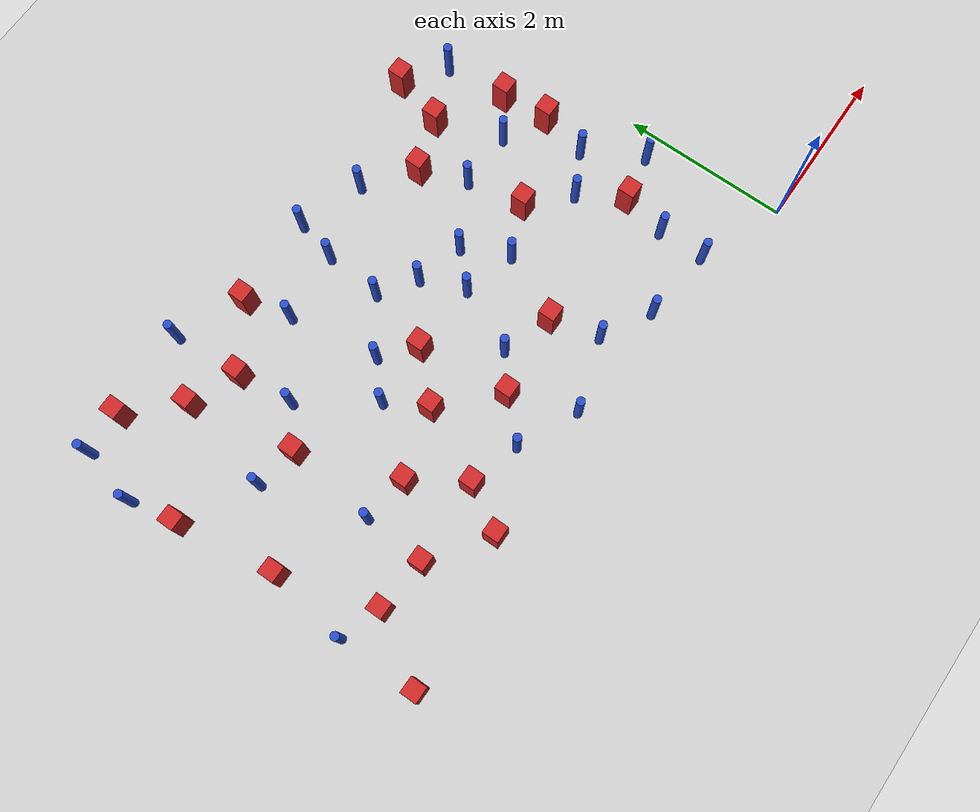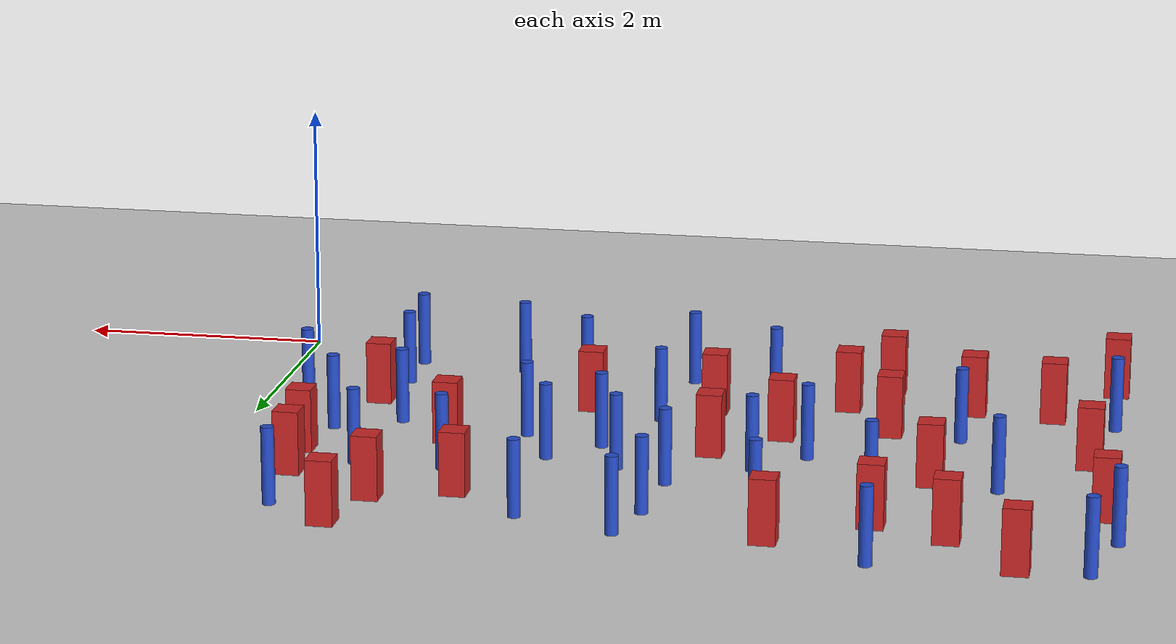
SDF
<sdf version="1.6">
 <world name="default">
  <model name="ground_plane">
   <static>1</static>
   <link name="link">
    <collision name="collision">
     <geometry><plane><normal>0 0 1</normal><size>100 100</size></plane></geometry>
     <surface><friction><ode><mu>100</mu><mu2>50</mu2></ode></friction></surface>
    </collision>
    <visual name="visual">
     <cast_shadows>0</cast_shadows>
     <geometry><plane><normal>0 0 1</normal><size>100 100</size></plane></geometry>
     <material>
      <ambient>1.0 1.0 1.0 1.0</ambient>
      <diffuse>0.8 0.8 0.8 1.0</diffuse>
      <specular>0.01 0.01 0.01 1.000000</specular>
     </material>
    </visual>
   </link>
  </model>
  <model name="pole_obstacle0">
   <static>true</static>
   <pose>-2.47867207568 0.840355301405 7.38925637345e-09 -8.471706928e-08 1.24976765177e-08 -1.74513093012e-07</pose>
   <link name="link">
    <pose>0 0 0.3 0 -0 0</pose>
    <inertial>
     <mass>1</mass>
     <inertia><ixx>0.145833</ixx><ixy>0</ixy><ixz>0</ixz><iyy>0.145833</iyy><iyz>0</iyz><izz>0.125</izz></inertia>
    </inertial>
    <collision name="collision">
     <geometry><cylinder><radius>0.05</radius><length>.6</length></cylinder></geometry>
    </collision>
    <visual name="visual">
     <geometry><cylinder><radius>0.05</radius><length>.6</length></cylinder></geometry>
     <material>
      <script><name>Gazebo/Blue</name><uri>file://media/materials/scripts/gazebo.material</uri></script>
     </material>
    </visual>
   </link>
  </model>
  <model name="pole_obstacle9">
   <static>true</static>
   <pose>-0.332700703792 1.61640806148 7.38925637345e-09 -8.47170692798e-08 1.24976765025e-08 -1.74513093018e-07</pose>
   <link name="link">
    <pose>0 0 0.3 0 -0 0</pose>
    <inertial>
     <mass>1</mass>
     <inertia><ixx>0.145833</ixx><ixy>0</ixy><ixz>0</ixz><iyy>0.145833</iyy><iyz>0</iyz><izz>0.125</izz></inertia>
    </inertial>
    <collision name="collision">
     <geometry><cylinder><radius>0.05</radius><length>.6</length></cylinder></geometry>
    </collision>
    <visual name="visual">
     <geometry><cylinder><radius>0.05</radius><length>.6</length></cylinder></geometry>
     <material>
      <script><name>Gazebo/Blue</name><uri>file://media/materials/scripts/gazebo.material</uri></script>
     </material>
    </visual>
   </link>
  </model>
  <model name="square_post_obstacle18">
   <static>true</static>
   <pose>-6.61899511941 2.2001608729 1.91545236811e-07 -7.35059704564e-06 1.12565212e-07 2.39332434364e-05</pose>
   <link name="link">
    <pose>0 0 0.25 0 -0 0</pose>
    <inertial>
     <mass>100</mass>
     <inertia>
      <ixx>0.166667</ixx>
      <ixy>0</ixy>
      <ixz>0</ixz>
      <iyy>0.166667</iyy>
      <iyz>0</iyz>
      <izz>0.166667</izz>
     </inertia>
    </inertial>
    <collision name="collision"><geometry><box><size>.2 .2 .5</size></box></geometry></collision>
    <visual name="visual">
     <geometry><box><size>.2 .2 .5</size></box></geometry>
     <material>
      <script><name>Gazebo/Red</name><uri>file://media/materials/scripts/gazebo.material</uri></script>
     </material>
    </visual>
   </link>
  </model>
  <model name="square_post_obstacle27">
   <static>true</static>
   <pose>-0.602505569343 2.85441513764 1.91545236811e-07 -7.35059704564e-06 1.12565212e-07 2.39332434364e-05</pose>
   <link name="link">
    <pose>0 0 0.25 0 -0 0</pose>
    <inertial>
     <mass>100</mass>
     <inertia>
      <ixx>0.166667</ixx>
      <ixy>0</ixy>
      <ixz>0</ixz>
      <iyy>0.166667</iyy>
      <iyz>0</iyz>
      <izz>0.166667</izz>
     </inertia>
    </inertial>
    <collision name="collision"><geometry><box><size>.2 .2 .5</size></box></geometry></collision>
    <visual name="visual">
     <geometry><box><size>.2 .2 .5</size></box></geometry>
     <material>
      <script><name>Gazebo/Red</name><uri>file://media/materials/scripts/gazebo.material</uri></script>
     </material>
    </visual>
   </link>
  </model>
  <model name="pole_obstacle30">
   <static>true</static>
   <pose>-6.75025455337 4.66066709969 7.38925637345e-09 -8.47170692796e-08 1.24976764786e-08 -1.74513093032e-07</pose>
   <link name="link">
    <pose>0 0 0.3 0 -0 0</pose>
    <inertial>
     <mass>1</mass>
     <inertia><ixx>0.145833</ixx><ixy>0</ixy><ixz>0</ixz><iyy>0.145833</iyy><iyz>0</iyz><izz>0.125</izz></inertia>
    </inertial>
    <collision name="collision">
     <geometry><cylinder><radius>0.05</radius><length>.6</length></cylinder></geometry>
    </collision>
    <visual name="visual">
     <geometry><cylinder><radius>0.05</radius><length>.6</length></cylinder></geometry>
     <material>
      <script><name>Gazebo/Blue</name><uri>file://media/materials/scripts/gazebo.material</uri></script>
     </material>
    </visual>
   </link>
  </model>
  <model name="pole_obstacle38">
   <static>true</static>
   <pose>-1.89686387756 0.518057410888 7.38925637345e-09 -8.47170692799e-08 1.24976765051e-08 -1.74513093017e-07</pose>
   <link name="link">
    <pose>0 0 0.3 0 -0 0</pose>
    <inertial>
     <mass>1</mass>
     <inertia><ixx>0.145833</ixx><ixy>0</ixy><ixz>0</ixz><iyy>0.145833</iyy><iyz>0</iyz><izz>0.125</izz></inertia>
    </inertial>
    <collision name="collision">
     <geometry><cylinder><radius>0.05</radius><length>.6</length></cylinder></geometry>
    </collision>
    <visual name="visual">
     <geometry><cylinder><radius>0.05</radius><length>.6</length></cylinder></geometry>
     <material>
      <script><name>Gazebo/Blue</name><uri>file://media/materials/scripts/gazebo.material</uri></script>
     </material>
    </visual>
   </link>
  </model>
  <model name="square_post_obstacle38">
   <static>true</static>
   <pose>-4.64865458235 1.05499291768 1.91545236811e-07 -7.35059704564e-06 1.12565212e-07 2.39332434364e-05</pose>
   <link name="link">
    <pose>0 0 0.25 0 -0 0</pose>
    <inertial>
     <mass>100</mass>
     <inertia>
      <ixx>0.166667</ixx>
      <ixy>0</ixy>
      <ixz>0</ixz>
      <iyy>0.166667</iyy>
      <iyz>0</iyz>
      <izz>0.166667</izz>
     </inertia>
    </inertial>
    <collision name="collision"><geometry><box><size>.2 .2 .5</size></box></geometry></collision>
    <visual name="visual">
     <geometry><box><size>.2 .2 .5</size></box></geometry>
     <material>
      <script><name>Gazebo/Red</name><uri>file://media/materials/scripts/gazebo.material</uri></script>
     </material>
    </visual>
   </link>
  </model>
  <model name="square_post_obstacle44">
   <static>true</static>
   <pose>-5.04046838211 1.66741661739 1.91545236811e-07 -7.35059704564e-06 1.12565212e-07 2.39332434364e-05</pose>
   <link name="link">
    <pose>0 0 0.25 0 -0 0</pose>
    <inertial>
     <mass>100</mass>
     <inertia>
      <ixx>0.166667</ixx>
      <ixy>0</ixy>
      <ixz>0</ixz>
      <iyy>0.166667</iyy>
      <iyz>0</iyz>
      <izz>0.166667</izz>
     </inertia>
    </inertial>
    <collision name="collision"><geometry><box><size>.2 .2 .5</size></box></geometry></collision>
    <visual name="visual">
     <geometry><box><size>.2 .2 .5</size></box></geometry>
     <material>
      <script><name>Gazebo/Red</name><uri>file://media/materials/scripts/gazebo.material</uri></script>
     </material>
    </visual>
   </link>
  </model>
  <model name="pole_obstacle50">
   <static>true</static>
   <pose>-2.25064445351 2.20363865116 7.38925637345e-09 -8.47170692798e-08 1.24976764939e-08 -1.74513093025e-07</pose>
   <link name="link">
    <pose>0 0 0.3 0 -0 0</pose>
    <inertial>
     <mass>1</mass>
     <inertia><ixx>0.145833</ixx><ixy>0</ixy><ixz>0</ixz><iyy>0.145833</iyy><iyz>0</iyz><izz>0.125</izz></inertia>
    </inertial>
    <collision name="collision">
     <geometry><cylinder><radius>0.05</radius><length>.6</length></cylinder></geometry>
    </collision>
    <visual name="visual">
     <geometry><cylinder><radius>0.05</radius><length>.6</length></cylinder></geometry>
     <material>
      <script><name>Gazebo/Blue</name><uri>file://media/materials/scripts/gazebo.material</uri></script>
     </material>
    </visual>
   </link>
  </model>
  <model name="square_post_obstacle50">
   <static>true</static>
   <pose>-1.37859100079 3.9013325248 1.91545236811e-07 -7.35059704564e-06 1.12565212e-07 2.39332434364e-05</pose>
   <link name="link">
    <pose>0 0 0.25 0 -0 0</pose>
    <inertial>
     <mass>100</mass>
     <inertia>
      <ixx>0.166667</ixx>
      <ixy>0</ixy>
      <ixz>0</ixz>
      <iyy>0.166667</iyy>
      <iyz>0</iyz>
      <izz>0.166667</izz>
     </inertia>
    </inertial>
    <collision name="collision"><geometry><box><size>.2 .2 .5</size></box></geometry></collision>
    <visual name="visual">
     <geometry><box><size>.2 .2 .5</size></box></geometry>
     <material>
      <script><name>Gazebo/Red</name><uri>file://media/materials/scripts/gazebo.material</uri></script>
     </material>
    </visual>
   </link>
  </model>
  <model name="pole_obstacle52">
   <static>true</static>
   <pose>-5.17864610444 4.71494136733 7.38925637345e-09 -8.47170692796e-08 1.24976764786e-08 -1.74513093032e-07</pose>
   <link name="link">
    <pose>0 0 0.3 0 -0 0</pose>
    <inertial>
     <mass>1</mass>
     <inertia><ixx>0.145833</ixx><ixy>0</ixy><ixz>0</ixz><iyy>0.145833</iyy><iyz>0</iyz><izz>0.125</izz></inertia>
    </inertial>
    <collision name="collision">
     <geometry><cylinder><radius>0.05</radius><length>.6</length></cylinder></geometry>
    </collision>
    <visual name="visual">
     <geometry><cylinder><radius>0.05</radius><length>.6</length></cylinder></geometry>
     <material>
      <script><name>Gazebo/Blue</name><uri>file://media/materials/scripts/gazebo.material</uri></script>
     </material>
    </visual>
   </link>
  </model>
  <model name="pole_obstacle53">
   <static>true</static>
   <pose>-3.21558309295 1.62672900845 7.38925637345e-09 -8.471706928e-08 1.24976765152e-08 -1.74513093012e-07</pose>
   <link name="link">
    <pose>0 0 0.3 0 -0 0</pose>
    <inertial>
     <mass>1</mass>
     <inertia><ixx>0.145833</ixx><ixy>0</ixy><ixz>0</ixz><iyy>0.145833</iyy><iyz>0</iyz><izz>0.125</izz></inertia>
    </inertial>
    <collision name="collision">
     <geometry><cylinder><radius>0.05</radius><length>.6</length></cylinder></geometry>
    </collision>
    <visual name="visual">
     <geometry><cylinder><radius>0.05</radius><length>.6</length></cylinder></geometry>
     <material>
      <script><name>Gazebo/Blue</name><uri>file://media/materials/scripts/gazebo.material</uri></script>
     </material>
    </visual>
   </link>
  </model>
  <model name="square_post_obstacle60">
   <static>true</static>
   <pose>-5.69667082044 4.10087332013 1.91545236811e-07 -7.35059704564e-06 1.12565212e-07 2.39332434364e-05</pose>
   <link name="link">
    <pose>0 0 0.25 0 -0 0</pose>
    <inertial>
     <mass>100</mass>
     <inertia>
      <ixx>0.166667</ixx>
      <ixy>0</ixy>
      <ixz>0</ixz>
      <iyy>0.166667</iyy>
      <iyz>0</iyz>
      <izz>0.166667</izz>
     </inertia>
    </inertial>
    <collision name="collision"><geometry><box><size>.2 .2 .5</size></box></geometry></collision>
    <visual name="visual">
     <geometry><box><size>.2 .2 .5</size></box></geometry>
     <material>
      <script><name>Gazebo/Red</name><uri>file://media/materials/scripts/gazebo.material</uri></script>
     </material>
    </visual>
   </link>
  </model>
  <model name="pole_obstacle60">
   <static>true</static>
   <pose>-2.53920427261 4.13607881634 7.38925637345e-09 -8.47170692798e-08 1.24976765033e-08 -1.74513093019e-07</pose>
   <link name="link">
    <pose>0 0 0.3 0 -0 0</pose>
    <inertial>
     <mass>1</mass>
     <inertia><ixx>0.145833</ixx><ixy>0</ixy><ixz>0</ixz><iyy>0.145833</iyy><iyz>0</iyz><izz>0.125</izz></inertia>
    </inertial>
    <collision name="collision">
     <geometry><cylinder><radius>0.05</radius><length>.6</length></cylinder></geometry>
    </collision>
    <visual name="visual">
     <geometry><cylinder><radius>0.05</radius><length>.6</length></cylinder></geometry>
     <material>
      <script><name>Gazebo/Blue</name><uri>file://media/materials/scripts/gazebo.material</uri></script>
     </material>
    </visual>
   </link>
  </model>
  <model name="pole_obstacle61">
   <static>true</static>
   <pose>-3.44347080513 3.889952016 7.38925637345e-09 -8.471706928e-08 1.24976765098e-08 -1.74513093016e-07</pose>
   <link name="link">
    <pose>0 0 0.3 0 -0 0</pose>
    <inertial>
     <mass>1</mass>
     <inertia><ixx>0.145833</ixx><ixy>0</ixy><ixz>0</ixz><iyy>0.145833</iyy><iyz>0</iyz><izz>0.125</izz></inertia>
    </inertial>
    <collision name="collision">
     <geometry><cylinder><radius>0.05</radius><length>.6</length></cylinder></geometry>
    </collision>
    <visual name="visual">
     <geometry><cylinder><radius>0.05</radius><length>.6</length></cylinder></geometry>
     <material>
      <script><name>Gazebo/Blue</name><uri>file://media/materials/scripts/gazebo.material</uri></script>
     </material>
    </visual>
   </link>
  </model>
  <model name="pole_obstacle64">
   <static>true</static>
   <pose>-1.77953633119 3.14322801685 7.38925637345e-09 -8.47170692799e-08 1.24976765053e-08 -1.74513093017e-07</pose>
   <link name="link">
    <pose>0 0 0.3 0 -0 0</pose>
    <inertial>
     <mass>1</mass>
     <inertia><ixx>0.145833</ixx><ixy>0</ixy><ixz>0</ixz><iyy>0.145833</iyy><iyz>0</iyz><izz>0.125</izz></inertia>
    </inertial>
    <collision name="collision">
     <geometry><cylinder><radius>0.05</radius><length>.6</length></cylinder></geometry>
    </collision>
    <visual name="visual">
     <geometry><cylinder><radius>0.05</radius><length>.6</length></cylinder></geometry>
     <material>
      <script><name>Gazebo/Blue</name><uri>file://media/materials/scripts/gazebo.material</uri></script>
     </material>
    </visual>
   </link>
  </model>
  <model name="pole_obstacle70">
   <static>true</static>
   <pose>-0.70093164936 4.18907004693 7.38925637345e-09 -8.471706928e-08 1.24976765086e-08 -1.74513093015e-07</pose>
   <link name="link">
    <pose>0 0 0.3 0 -0 0</pose>
    <inertial>
     <mass>1</mass>
     <inertia><ixx>0.145833</ixx><ixy>0</ixy><ixz>0</ixz><iyy>0.145833</iyy><iyz>0</iyz><izz>0.125</izz></inertia>
    </inertial>
    <collision name="collision">
     <geometry><cylinder><radius>0.05</radius><length>.6</length></cylinder></geometry>
    </collision>
    <visual name="visual">
     <geometry><cylinder><radius>0.05</radius><length>.6</length></cylinder></geometry>
     <material>
      <script><name>Gazebo/Blue</name><uri>file://media/materials/scripts/gazebo.material</uri></script>
     </material>
    </visual>
   </link>
  </model>
  <model name="pole_obstacle81">
   <static>true</static>
   <pose>-3.32470801364 0.561410433167 7.38925637345e-09 -8.471706928e-08 1.24976765177e-08 -1.74513093012e-07</pose>
   <link name="link">
    <pose>0 0 0.3 0 -0 0</pose>
    <inertial>
     <mass>1</mass>
     <inertia><ixx>0.145833</ixx><ixy>0</ixy><ixz>0</ixz><iyy>0.145833</iyy><iyz>0</iyz><izz>0.125</izz></inertia>
    </inertial>
    <collision name="collision">
     <geometry><cylinder><radius>0.05</radius><length>.6</length></cylinder></geometry>
    </collision>
    <visual name="visual">
     <geometry><cylinder><radius>0.05</radius><length>.6</length></cylinder></geometry>
     <material>
      <script><name>Gazebo/Blue</name><uri>file://media/materials/scripts/gazebo.material</uri></script>
     </material>
    </visual>
   </link>
  </model>
  <model name="square_post_obstacle83">
   <static>true</static>
   <pose>-0.650541361645 3.42090749881 1.91545236811e-07 -7.35059704564e-06 1.12565212e-07 2.39332434364e-05</pose>
   <link name="link">
    <pose>0 0 0.25 0 -0 0</pose>
    <inertial>
     <mass>100</mass>
     <inertia>
      <ixx>0.166667</ixx>
      <ixy>0</ixy>
      <ixz>0</ixz>
      <iyy>0.166667</iyy>
      <iyz>0</iyz>
      <izz>0.166667</izz>
     </inertia>
    </inertial>
    <collision name="collision"><geometry><box><size>.2 .2 .5</size></box></geometry></collision>
    <visual name="visual">
     <geometry><box><size>.2 .2 .5</size></box></geometry>
     <material>
      <script><name>Gazebo/Red</name><uri>file://media/materials/scripts/gazebo.material</uri></script>
     </material>
    </visual>
   </link>
  </model>
  <model name="pole_obstacle96">
   <static>true</static>
   <pose>-5.97507077546 2.9319231322 7.38925637345e-09 -8.47170692798e-08 1.24976764937e-08 -1.74513093023e-07</pose>
   <link name="link">
    <pose>0 0 0.3 0 -0 0</pose>
    <inertial>
     <mass>1</mass>
     <inertia><ixx>0.145833</ixx><ixy>0</ixy><ixz>0</ixz><iyy>0.145833</iyy><iyz>0</iyz><izz>0.125</izz></inertia>
    </inertial>
    <collision name="collision">
     <geometry><cylinder><radius>0.05</radius><length>.6</length></cylinder></geometry>
    </collision>
    <visual name="visual">
     <geometry><cylinder><radius>0.05</radius><length>.6</length></cylinder></geometry>
     <material>
      <script><name>Gazebo/Blue</name><uri>file://media/materials/scripts/gazebo.material</uri></script>
     </material>
    </visual>
   </link>
  </model>
  <model name="square_post_obstacle84">
   <static>true</static>
   <pose>-5.46310733339 2.83363978116 1.91545236811e-07 -7.35059704564e-06 1.12565212e-07 2.39332434364e-05</pose>
   <link name="link">
    <pose>0 0 0.25 0 -0 0</pose>
    <inertial>
     <mass>100</mass>
     <inertia>
      <ixx>0.166667</ixx>
      <ixy>0</ixy>
      <ixz>0</ixz>
      <iyy>0.166667</iyy>
      <iyz>0</iyz>
      <izz>0.166667</izz>
     </inertia>
    </inertial>
    <collision name="collision"><geometry><box><size>.2 .2 .5</size></box></geometry></collision>
    <visual name="visual">
     <geometry><box><size>.2 .2 .5</size></box></geometry>
     <material>
      <script><name>Gazebo/Red</name><uri>file://media/materials/scripts/gazebo.material</uri></script>
     </material>
    </visual>
   </link>
  </model>
  <model name="pole_obstacle97">
   <static>true</static>
   <pose>-1.21026270416 2.03171744039 7.38925637345e-09 -8.47170692798e-08 1.2497676495e-08 -1.74513093023e-07</pose>
   <link name="link">
    <pose>0 0 0.3 0 -0 0</pose>
    <inertial>
     <mass>1</mass>
     <inertia><ixx>0.145833</ixx><ixy>0</ixy><ixz>0</ixz><iyy>0.145833</iyy><iyz>0</iyz><izz>0.125</izz></inertia>
    </inertial>
    <collision name="collision">
     <geometry><cylinder><radius>0.05</radius><length>.6</length></cylinder></geometry>
    </collision>
    <visual name="visual">
     <geometry><cylinder><radius>0.05</radius><length>.6</length></cylinder></geometry>
     <material>
      <script><name>Gazebo/Blue</name><uri>file://media/materials/scripts/gazebo.material</uri></script>
     </material>
    </visual>
   </link>
  </model>
  <model name="square_post_obstacle90">
   <static>true</static>
   <pose>-5.64098583288 1.00134676278 1.91545236811e-07 -7.35059704564e-06 1.12565212e-07 2.39332434364e-05</pose>
   <link name="link">
    <pose>0 0 0.25 0 -0 0</pose>
    <inertial>
     <mass>100</mass>
     <inertia>
      <ixx>0.166667</ixx>
      <ixy>0</ixy>
      <ixz>0</ixz>
      <iyy>0.166667</iyy>
      <iyz>0</iyz>
      <izz>0.166667</izz>
     </inertia>
    </inertial>
    <collision name="collision"><geometry><box><size>.2 .2 .5</size></box></geometry></collision>
    <visual name="visual">
     <geometry><box><size>.2 .2 .5</size></box></geometry>
     <material>
      <script><name>Gazebo/Red</name><uri>file://media/materials/scripts/gazebo.material</uri></script>
     </material>
    </visual>
   </link>
  </model>
  <model name="pole_obstacle103">
   <static>true</static>
   <pose>-4.09921175198 2.74657863757 7.38925637345e-09 -8.47170692798e-08 1.24976764937e-08 -1.74513093023e-07</pose>
   <link name="link">
    <pose>0 0 0.3 0 -0 0</pose>
    <inertial>
     <mass>1</mass>
     <inertia><ixx>0.145833</ixx><ixy>0</ixy><ixz>0</ixz><iyy>0.145833</iyy><iyz>0</iyz><izz>0.125</izz></inertia>
    </inertial>
    <collision name="collision">
     <geometry><cylinder><radius>0.05</radius><length>.6</length></cylinder></geometry>
    </collision>
    <visual name="visual">
     <geometry><cylinder><radius>0.05</radius><length>.6</length></cylinder></geometry>
     <material>
      <script><name>Gazebo/Blue</name><uri>file://media/materials/scripts/gazebo.material</uri></script>
     </material>
    </visual>
   </link>
  </model>
  <model name="square_post_obstacle95">
   <static>true</static>
   <pose>-6.2293232085 4.65851549312 1.91545236811e-07 -7.35059704564e-06 1.12565212e-07 2.39332434364e-05</pose>
   <link name="link">
    <pose>0 0 0.25 0 -0 0</pose>
    <inertial>
     <mass>100</mass>
     <inertia>
      <ixx>0.166667</ixx>
      <ixy>0</ixy>
      <ixz>0</ixz>
      <iyy>0.166667</iyy>
      <iyz>0</iyz>
      <izz>0.166667</izz>
     </inertia>
    </inertial>
    <collision name="collision"><geometry><box><size>.2 .2 .5</size></box></geometry></collision>
    <visual name="visual">
     <geometry><box><size>.2 .2 .5</size></box></geometry>
     <material>
      <script><name>Gazebo/Red</name><uri>file://media/materials/scripts/gazebo.material</uri></script>
     </material>
    </visual>
   </link>
  </model>
  <model name="pole_obstacle117">
   <static>true</static>
   <pose>-1.01677236007 0.417970012923 7.38925637345e-09 -8.47170692799e-08 1.24976765015e-08 -1.7451309302e-07</pose>
   <link name="link">
    <pose>0 0 0.3 0 -0 0</pose>
    <inertial>
     <mass>1</mass>
     <inertia><ixx>0.145833</ixx><ixy>0</ixy><ixz>0</ixz><iyy>0.145833</iyy><iyz>0</iyz><izz>0.125</izz></inertia>
    </inertial>
    <collision name="collision">
     <geometry><cylinder><radius>0.05</radius><length>.6</length></cylinder></geometry>
    </collision>
    <visual name="visual">
     <geometry><cylinder><radius>0.05</radius><length>.6</length></cylinder></geometry>
     <material>
      <script><name>Gazebo/Blue</name><uri>file://media/materials/scripts/gazebo.material</uri></script>
     </material>
    </visual>
   </link>
  </model>
  <model name="pole_obstacle119">
   <static>true</static>
   <pose>-5.05330797617 3.20515398108 7.38925637345e-09 -8.47170692798e-08 1.24976764937e-08 -1.74513093023e-07</pose>
   <link name="link">
    <pose>0 0 0.3 0 -0 0</pose>
    <inertial>
     <mass>1</mass>
     <inertia><ixx>0.145833</ixx><ixy>0</ixy><ixz>0</ixz><iyy>0.145833</iyy><iyz>0</iyz><izz>0.125</izz></inertia>
    </inertial>
    <collision name="collision">
     <geometry><cylinder><radius>0.05</radius><length>.6</length></cylinder></geometry>
    </collision>
    <visual name="visual">
     <geometry><cylinder><radius>0.05</radius><length>.6</length></cylinder></geometry>
     <material>
      <script><name>Gazebo/Blue</name><uri>file://media/materials/scripts/gazebo.material</uri></script>
     </material>
    </visual>
   </link>
  </model>
  <model name="square_post_obstacle117">
   <static>true</static>
   <pose>-4.21957821775 1.90731988514 1.91545236811e-07 -7.35059704564e-06 1.12565212e-07 2.39332434364e-05</pose>
   <link name="link">
    <pose>0 0 0.25 0 -0 0</pose>
    <inertial>
     <mass>100</mass>
     <inertia>
      <ixx>0.166667</ixx>
      <ixy>0</ixy>
      <ixz>0</ixz>
      <iyy>0.166667</iyy>
      <iyz>0</iyz>
      <izz>0.166667</izz>
     </inertia>
    </inertial>
    <collision name="collision"><geometry><box><size>.2 .2 .5</size></box></geometry></collision>
    <visual name="visual">
     <geometry><box><size>.2 .2 .5</size></box></geometry>
     <material>
      <script><name>Gazebo/Red</name><uri>file://media/materials/scripts/gazebo.material</uri></script>
     </material>
    </visual>
   </link>
  </model>
  <model name="square_post_obstacle123">
   <static>true</static>
   <pose>-1.99631982833 3.68837251327 1.91545236811e-07 -7.35059704564e-06 1.12565212e-07 2.39332434364e-05</pose>
   <link name="link">
    <pose>0 0 0.25 0 -0 0</pose>
    <inertial>
     <mass>100</mass>
     <inertia>
      <ixx>0.166667</ixx>
      <ixy>0</ixy>
      <ixz>0</ixz>
      <iyy>0.166667</iyy>
      <iyz>0</iyz>
      <izz>0.166667</izz>
     </inertia>
    </inertial>
    <collision name="collision"><geometry><box><size>.2 .2 .5</size></box></geometry></collision>
    <visual name="visual">
     <geometry><box><size>.2 .2 .5</size></box></geometry>
     <material>
      <script><name>Gazebo/Red</name><uri>file://media/materials/scripts/gazebo.material</uri></script>
     </material>
    </visual>
   </link>
  </model>
  <model name="square_post_obstacle126">
   <static>true</static>
   <pose>-4.95462201605 0.533451662848 1.91545236811e-07 -7.35059704564e-06 1.12565212e-07 2.39332434364e-05</pose>
   <link name="link">
    <pose>0 0 0.25 0 -0 0</pose>
    <inertial>
     <mass>100</mass>
     <inertia>
      <ixx>0.166667</ixx>
      <ixy>0</ixy>
      <ixz>0</ixz>
      <iyy>0.166667</iyy>
      <iyz>0</iyz>
      <izz>0.166667</izz>
     </inertia>
    </inertial>
    <collision name="collision"><geometry><box><size>.2 .2 .5</size></box></geometry></collision>
    <visual name="visual">
     <geometry><box><size>.2 .2 .5</size></box></geometry>
     <material>
      <script><name>Gazebo/Red</name><uri>file://media/materials/scripts/gazebo.material</uri></script>
     </material>
    </visual>
   </link>
  </model>
  <model name="square_post_obstacle127">
   <static>true</static>
   <pose>-6.79442164814 3.3932729141 1.91545236811e-07 -7.35059704564e-06 1.12565212e-07 2.39332434364e-05</pose>
   <link name="link">
    <pose>0 0 0.25 0 -0 0</pose>
    <inertial>
     <mass>100</mass>
     <inertia>
      <ixx>0.166667</ixx>
      <ixy>0</ixy>
      <ixz>0</ixz>
      <iyy>0.166667</iyy>
      <iyz>0</iyz>
      <izz>0.166667</izz>
     </inertia>
    </inertial>
    <collision name="collision"><geometry><box><size>.2 .2 .5</size></box></geometry></collision>
    <visual name="visual">
     <geometry><box><size>.2 .2 .5</size></box></geometry>
     <material>
      <script><name>Gazebo/Red</name><uri>file://media/materials/scripts/gazebo.material</uri></script>
     </material>
    </visual>
   </link>
  </model>
  <model name="square_post_obstacle133">
   <static>true</static>
   <pose>-5.12745706158 3.8673485739 1.91545236811e-07 -7.35059704564e-06 1.12565212e-07 2.39332434364e-05</pose>
   <link name="link">
    <pose>0 0 0.25 0 -0 0</pose>
    <inertial>
     <mass>100</mass>
     <inertia>
      <ixx>0.166667</ixx>
      <ixy>0</ixy>
      <ixz>0</ixz>
      <iyy>0.166667</iyy>
      <iyz>0</iyz>
      <izz>0.166667</izz>
     </inertia>
    </inertial>
    <collision name="collision"><geometry><box><size>.2 .2 .5</size></box></geometry></collision>
    <visual name="visual">
     <geometry><box><size>.2 .2 .5</size></box></geometry>
     <material>
      <script><name>Gazebo/Red</name><uri>file://media/materials/scripts/gazebo.material</uri></script>
     </material>
    </visual>
   </link>
  </model>
  <model name="square_post_obstacle144">
   <static>true</static>
   <pose>-1.19324573562 4.5232054328 1.91545236811e-07 -7.35059704564e-06 1.12565212e-07 2.39332434364e-05</pose>
   <link name="link">
    <pose>0 0 0.25 0 -0 0</pose>
    <inertial>
     <mass>100</mass>
     <inertia>
      <ixx>0.166667</ixx>
      <ixy>0</ixy>
      <ixz>0</ixz>
      <iyy>0.166667</iyy>
      <iyz>0</iyz>
      <izz>0.166667</izz>
     </inertia>
    </inertial>
    <collision name="collision"><geometry><box><size>.2 .2 .5</size></box></geometry></collision>
    <visual name="visual">
     <geometry><box><size>.2 .2 .5</size></box></geometry>
     <material>
      <script><name>Gazebo/Red</name><uri>file://media/materials/scripts/gazebo.material</uri></script>
     </material>
    </visual>
   </link>
  </model>
  <model name="pole_obstacle155">
   <static>true</static>
   <pose>-6.91053978063 3.96144965623 7.38925637345e-09 -8.47170692798e-08 1.2497676496e-08 -1.74513093023e-07</pose>
   <link name="link">
    <pose>0 0 0.3 0 -0 0</pose>
    <inertial>
     <mass>1</mass>
     <inertia><ixx>0.145833</ixx><ixy>0</ixy><ixz>0</ixz><iyy>0.145833</iyy><iyz>0</iyz><izz>0.125</izz></inertia>
    </inertial>
    <collision name="collision">
     <geometry><cylinder><radius>0.05</radius><length>.6</length></cylinder></geometry>
    </collision>
    <visual name="visual">
     <geometry><cylinder><radius>0.05</radius><length>.6</length></cylinder></geometry>
     <material>
      <script><name>Gazebo/Blue</name><uri>file://media/materials/scripts/gazebo.material</uri></script>
     </material>
    </visual>
   </link>
  </model>
  <model name="pole_obstacle156">
   <static>true</static>
   <pose>-4.47795823845 2.38881518312 7.38925637345e-09 -8.47170692798e-08 1.24976764937e-08 -1.74513093023e-07</pose>
   <link name="link">
    <pose>0 0 0.3 0 -0 0</pose>
    <inertial>
     <mass>1</mass>
     <inertia><ixx>0.145833</ixx><ixy>0</ixy><ixz>0</ixz><iyy>0.145833</iyy><iyz>0</iyz><izz>0.125</izz></inertia>
    </inertial>
    <collision name="collision">
     <geometry><cylinder><radius>0.05</radius><length>.6</length></cylinder></geometry>
    </collision>
    <visual name="visual">
     <geometry><cylinder><radius>0.05</radius><length>.6</length></cylinder></geometry>
     <material>
      <script><name>Gazebo/Blue</name><uri>file://media/materials/scripts/gazebo.material</uri></script>
     </material>
    </visual>
   </link>
  </model>
  <model name="square_post_obstacle150">
   <static>true</static>
   <pose>-4.40600375792 4.34730838817 1.91545236811e-07 -7.35059704564e-06 1.12565212e-07 2.39332434364e-05</pose>
   <link name="link">
    <pose>0 0 0.25 0 -0 0</pose>
    <inertial>
     <mass>100</mass>
     <inertia>
      <ixx>0.166667</ixx>
      <ixy>0</ixy>
      <ixz>0</ixz>
      <iyy>0.166667</iyy>
      <iyz>0</iyz>
      <izz>0.166667</izz>
     </inertia>
    </inertial>
    <collision name="collision"><geometry><box><size>.2 .2 .5</size></box></geometry></collision>
    <visual name="visual">
     <geometry><box><size>.2 .2 .5</size></box></geometry>
     <material>
      <script><name>Gazebo/Red</name><uri>file://media/materials/scripts/gazebo.material</uri></script>
     </material>
    </visual>
   </link>
  </model>
  <model name="pole_obstacle159">
   <static>true</static>
   <pose>-1.08820430992 3.13169414158 7.38925637345e-09 -8.47170692799e-08 1.24976765053e-08 -1.74513093017e-07</pose>
   <link name="link">
    <pose>0 0 0.3 0 -0 0</pose>
    <inertial>
     <mass>1</mass>
     <inertia><ixx>0.145833</ixx><ixy>0</ixy><ixz>0</ixz><iyy>0.145833</iyy><iyz>0</iyz><izz>0.125</izz></inertia>
    </inertial>
    <collision name="collision">
     <geometry><cylinder><radius>0.05</radius><length>.6</length></cylinder></geometry>
    </collision>
    <visual name="visual">
     <geometry><cylinder><radius>0.05</radius><length>.6</length></cylinder></geometry>
     <material>
      <script><name>Gazebo/Blue</name><uri>file://media/materials/scripts/gazebo.material</uri></script>
     </material>
    </visual>
   </link>
  </model>
  <model name="square_post_obstacle158">
   <static>true</static>
   <pose>-3.72894968609 2.40947061175 1.91545236811e-07 -7.35059704564e-06 1.12565212e-07 2.39332434364e-05</pose>
   <link name="link">
    <pose>0 0 0.25 0 -0 0</pose>
    <inertial>
     <mass>100</mass>
     <inertia>
      <ixx>0.166667</ixx>
      <ixy>0</ixy>
      <ixz>0</ixz>
      <iyy>0.166667</iyy>
      <iyz>0</iyz>
      <izz>0.166667</izz>
     </inertia>
    </inertial>
    <collision name="collision"><geometry><box><size>.2 .2 .5</size></box></geometry></collision>
    <visual name="visual">
     <geometry><box><size>.2 .2 .5</size></box></geometry>
     <material>
      <script><name>Gazebo/Red</name><uri>file://media/materials/scripts/gazebo.material</uri></script>
     </material>
    </visual>
   </link>
  </model>
  <model name="square_post_obstacle160">
   <static>true</static>
   <pose>-0.91072682187 1.50599281557 1.91545236811e-07 -7.35059704564e-06 1.12565212e-07 2.39332434364e-05</pose>
   <link name="link">
    <pose>0 0 0.25 0 -0 0</pose>
    <inertial>
     <mass>100</mass>
     <inertia>
      <ixx>0.166667</ixx>
      <ixy>0</ixy>
      <ixz>0</ixz>
      <iyy>0.166667</iyy>
      <iyz>0</iyz>
      <izz>0.166667</izz>
     </inertia>
    </inertial>
    <collision name="collision"><geometry><box><size>.2 .2 .5</size></box></geometry></collision>
    <visual name="visual">
     <geometry><box><size>.2 .2 .5</size></box></geometry>
     <material>
      <script><name>Gazebo/Red</name><uri>file://media/materials/scripts/gazebo.material</uri></script>
     </material>
    </visual>
   </link>
  </model>
  <model name="pole_obstacle174">
   <static>true</static>
   <pose>-3.07872058109 2.90402875694 7.38925637345e-09 -8.471706928e-08 1.24976765098e-08 -1.74513093016e-07</pose>
   <link name="link">
    <pose>0 0 0.3 0 -0 0</pose>
    <inertial>
     <mass>1</mass>
     <inertia><ixx>0.145833</ixx><ixy>0</ixy><ixz>0</ixz><iyy>0.145833</iyy><iyz>0</iyz><izz>0.125</izz></inertia>
    </inertial>
    <collision name="collision">
     <geometry><cylinder><radius>0.05</radius><length>.6</length></cylinder></geometry>
    </collision>
    <visual name="visual">
     <geometry><cylinder><radius>0.05</radius><length>.6</length></cylinder></geometry>
     <material>
      <script><name>Gazebo/Blue</name><uri>file://media/materials/scripts/gazebo.material</uri></script>
     </material>
    </visual>
   </link>
  </model>
  <model name="pole_obstacle177">
   <static>true</static>
   <pose>-3.30940308454 4.39025163637 7.38925637345e-09 -8.47170692798e-08 1.24976765033e-08 -1.74513093019e-07</pose>
   <link name="link">
    <pose>0 0 0.3 0 -0 0</pose>
    <inertial>
     <mass>1</mass>
     <inertia><ixx>0.145833</ixx><ixy>0</ixy><ixz>0</ixz><iyy>0.145833</iyy><iyz>0</iyz><izz>0.125</izz></inertia>
    </inertial>
    <collision name="collision">
     <geometry><cylinder><radius>0.05</radius><length>.6</length></cylinder></geometry>
    </collision>
    <visual name="visual">
     <geometry><cylinder><radius>0.05</radius><length>.6</length></cylinder></geometry>
     <material>
      <script><name>Gazebo/Blue</name><uri>file://media/materials/scripts/gazebo.material</uri></script>
     </material>
    </visual>
   </link>
  </model>
  <model name="pole_obstacle178">
   <static>true</static>
   <pose>-6.77133801534 1.23764145793 7.38925637345e-09 -8.471706928e-08 1.24976765134e-08 -1.74513093015e-07</pose>
   <link name="link">
    <pose>0 0 0.3 0 -0 0</pose>
    <inertial>
     <mass>1</mass>
     <inertia><ixx>0.145833</ixx><ixy>0</ixy><ixz>0</ixz><iyy>0.145833</iyy><iyz>0</iyz><izz>0.125</izz></inertia>
    </inertial>
    <collision name="collision">
     <geometry><cylinder><radius>0.05</radius><length>.6</length></cylinder></geometry>
    </collision>
    <visual name="visual">
     <geometry><cylinder><radius>0.05</radius><length>.6</length></cylinder></geometry>
     <material>
      <script><name>Gazebo/Blue</name><uri>file://media/materials/scripts/gazebo.material</uri></script>
     </material>
    </visual>
   </link>
  </model>
  <model name="pole_obstacle181">
   <static>true</static>
   <pose>-2.5055237072 2.7425818518 7.38925637345e-09 -8.47170692798e-08 1.24976764939e-08 -1.74513093025e-07</pose>
   <link name="link">
    <pose>0 0 0.3 0 -0 0</pose>
    <inertial>
     <mass>1</mass>
     <inertia><ixx>0.145833</ixx><ixy>0</ixy><ixz>0</ixz><iyy>0.145833</iyy><iyz>0</iyz><izz>0.125</izz></inertia>
    </inertial>
    <collision name="collision">
     <geometry><cylinder><radius>0.05</radius><length>.6</length></cylinder></geometry>
    </collision>
    <visual name="visual">
     <geometry><cylinder><radius>0.05</radius><length>.6</length></cylinder></geometry>
     <material>
      <script><name>Gazebo/Blue</name><uri>file://media/materials/scripts/gazebo.material</uri></script>
     </material>
    </visual>
   </link>
  </model>
  <model name="pole_obstacle187">
   <static>true</static>
   <pose>-4.03538911549 0.892400670633 7.38925637345e-09 -8.47170692798e-08 1.24976764954e-08 -1.74513093023e-07</pose>
   <link name="link">
    <pose>0 0 0.3 0 -0 0</pose>
    <inertial>
     <mass>1</mass>
     <inertia><ixx>0.145833</ixx><ixy>0</ixy><ixz>0</ixz><iyy>0.145833</iyy><iyz>0</iyz><izz>0.125</izz></inertia>
    </inertial>
    <collision name="collision">
     <geometry><cylinder><radius>0.05</radius><length>.6</length></cylinder></geometry>
    </collision>
    <visual name="visual">
     <geometry><cylinder><radius>0.05</radius><length>.6</length></cylinder></geometry>
     <material>
      <script><name>Gazebo/Blue</name><uri>file://media/materials/scripts/gazebo.material</uri></script>
     </material>
    </visual>
   </link>
  </model>
  <model name="pole_obstacle192">
   <static>true</static>
   <pose>-5.60006456901 1.7518947772 7.38925637345e-09 -8.471706928e-08 1.24976765134e-08 -1.74513093015e-07</pose>
   <link name="link">
    <pose>0 0 0.3 0 -0 0</pose>
    <inertial>
     <mass>1</mass>
     <inertia><ixx>0.145833</ixx><ixy>0</ixy><ixz>0</ixz><iyy>0.145833</iyy><iyz>0</iyz><izz>0.125</izz></inertia>
    </inertial>
    <collision name="collision">
     <geometry><cylinder><radius>0.05</radius><length>.6</length></cylinder></geometry>
    </collision>
    <visual name="visual">
     <geometry><cylinder><radius>0.05</radius><length>.6</length></cylinder></geometry>
     <material>
      <script><name>Gazebo/Blue</name><uri>file://media/materials/scripts/gazebo.material</uri></script>
     </material>
    </visual>
   </link>
  </model>
  <model name="square_post_obstacle191">
   <static>true</static>
   <pose>-3.61086770254 1.31839562243 1.91545236811e-07 -7.35059704564e-06 1.12565212e-07 2.39332434364e-05</pose>
   <link name="link">
    <pose>0 0 0.25 0 -0 0</pose>
    <inertial>
     <mass>100</mass>
     <inertia>
      <ixx>0.166667</ixx>
      <ixy>0</ixy>
      <ixz>0</ixz>
      <iyy>0.166667</iyy>
      <iyz>0</iyz>
      <izz>0.166667</izz>
     </inertia>
    </inertial>
    <collision name="collision"><geometry><box><size>.2 .2 .5</size></box></geometry></collision>
    <visual name="visual">
     <geometry><box><size>.2 .2 .5</size></box></geometry>
     <material>
      <script><name>Gazebo/Red</name><uri>file://media/materials/scripts/gazebo.material</uri></script>
     </material>
    </visual>
   </link>
  </model>
  <model name="square_post_obstacle193">
   <static>true</static>
   <pose>-2.629269455 1.4185766865 1.91545236811e-07 -7.35059704564e-06 1.12565212e-07 2.39332434364e-05</pose>
   <link name="link">
    <pose>0 0 0.25 0 -0 0</pose>
    <inertial>
     <mass>100</mass>
     <inertia>
      <ixx>0.166667</ixx>
      <ixy>0</ixy>
      <ixz>0</ixz>
      <iyy>0.166667</iyy>
      <iyz>0</iyz>
      <izz>0.166667</izz>
     </inertia>
    </inertial>
    <collision name="collision"><geometry><box><size>.2 .2 .5</size></box></geometry></collision>
    <visual name="visual">
     <geometry><box><size>.2 .2 .5</size></box></geometry>
     <material>
      <script><name>Gazebo/Red</name><uri>file://media/materials/scripts/gazebo.material</uri></script>
     </material>
    </visual>
   </link>
  </model>
  <model name="square_post_obstacle195">
   <static>true</static>
   <pose>-6.27660322156 1.06737922672 1.91545236811e-07 -7.35059704564e-06 1.12565212e-07 2.39332434364e-05</pose>
   <link name="link">
    <pose>0 0 0.25 0 -0 0</pose>
    <inertial>
     <mass>100</mass>
     <inertia>
      <ixx>0.166667</ixx>
      <ixy>0</ixy>
      <ixz>0</ixz>
      <iyy>0.166667</iyy>
      <iyz>0</iyz>
      <izz>0.166667</izz>
     </inertia>
    </inertial>
    <collision name="collision"><geometry><box><size>.2 .2 .5</size></box></geometry></collision>
    <visual name="visual">
     <geometry><box><size>.2 .2 .5</size></box></geometry>
     <material>
      <script><name>Gazebo/Red</name><uri>file://media/materials/scripts/gazebo.material</uri></script>
     </material>
    </visual>
   </link>
  </model>
  <model name="square_post_obstacle199">
   <static>true</static>
   <pose>-6.74245235205 0.28410712576 1.91545236811e-07 -7.35059704564e-06 1.12565212e-07 2.39332434364e-05</pose>
   <link name="link">
    <pose>0 0 0.25 0 -0 0</pose>
    <inertial>
     <mass>100</mass>
     <inertia>
      <ixx>0.166667</ixx>
      <ixy>0</ixy>
      <ixz>0</ixz>
      <iyy>0.166667</iyy>
      <iyz>0</iyz>
      <izz>0.166667</izz>
     </inertia>
    </inertial>
    <collision name="collision"><geometry><box><size>.2 .2 .5</size></box></geometry></collision>
    <visual name="visual">
     <geometry><box><size>.2 .2 .5</size></box></geometry>
     <material>
      <script><name>Gazebo/Red</name><uri>file://media/materials/scripts/gazebo.material</uri></script>
     </material>
    </visual>
   </link>
  </model>
  <model name="square_post_obstacle200">
   <static>true</static>
   <pose>-1.66869972586 2.452481654 1.91545236811e-07 -7.35059704564e-06 1.12565212e-07 2.39332434364e-05</pose>
   <link name="link">
    <pose>0 0 0.25 0 -0 0</pose>
    <inertial>
     <mass>100</mass>
     <inertia>
      <ixx>0.166667</ixx>
      <ixy>0</ixy>
      <ixz>0</ixz>
      <iyy>0.166667</iyy>
      <iyz>0</iyz>
      <izz>0.166667</izz>
     </inertia>
    </inertial>
    <collision name="collision"><geometry><box><size>.2 .2 .5</size></box></geometry></collision>
    <visual name="visual">
     <geometry><box><size>.2 .2 .5</size></box></geometry>
     <material>
      <script><name>Gazebo/Red</name><uri>file://media/materials/scripts/gazebo.material</uri></script>
     </material>
    </visual>
   </link>
  </model>
  <model name="pole_obstacle214">
   <static>true</static>
   <pose>-1.02467249741 0.976861478216 7.38925637345e-09 -8.471706928e-08 1.24976765083e-08 -1.74513093017e-07</pose>
   <link name="link">
    <pose>0 0 0.3 0 -0 0</pose>
    <inertial>
     <mass>1</mass>
     <inertia><ixx>0.145833</ixx><ixy>0</ixy><ixz>0</ixz><iyy>0.145833</iyy><iyz>0</iyz><izz>0.125</izz></inertia>
    </inertial>
    <collision name="collision">
     <geometry><cylinder><radius>0.05</radius><length>.6</length></cylinder></geometry>
    </collision>
    <visual name="visual">
     <geometry><cylinder><radius>0.05</radius><length>.6</length></cylinder></geometry>
     <material>
      <script><name>Gazebo/Blue</name><uri>file://media/materials/scripts/gazebo.material</uri></script>
     </material>
    </visual>
   </link>
  </model>
  <model name="pole_obstacle215">
   <static>true</static>
   <pose>-3.50354466287 3.1961771205 7.38925637345e-09 -8.47170692798e-08 1.24976764939e-08 -1.74513093025e-07</pose>
   <link name="link">
    <pose>0 0 0.3 0 -0 0</pose>
    <inertial>
     <mass>1</mass>
     <inertia><ixx>0.145833</ixx><ixy>0</ixy><ixz>0</ixz><iyy>0.145833</iyy><iyz>0</iyz><izz>0.125</izz></inertia>
    </inertial>
    <collision name="collision">
     <geometry><cylinder><radius>0.05</radius><length>.6</length></cylinder></geometry>
    </collision>
    <visual name="visual">
     <geometry><cylinder><radius>0.05</radius><length>.6</length></cylinder></geometry>
     <material>
      <script><name>Gazebo/Blue</name><uri>file://media/materials/scripts/gazebo.material</uri></script>
     </material>
    </visual>
   </link>
  </model>
  <model name="pole_obstacle221">
   <static>true</static>
   <pose>-2.87463112984 2.3802469572 7.38925637345e-09 -8.47170692798e-08 1.24976764939e-08 -1.74513093025e-07</pose>
   <link name="link">
    <pose>0 0 0.3 0 -0 0</pose>
    <inertial>
     <mass>1</mass>
     <inertia><ixx>0.145833</ixx><ixy>0</ixy><ixz>0</ixz><iyy>0.145833</iyy><iyz>0</iyz><izz>0.125</izz></inertia>
    </inertial>
    <collision name="collision">
     <geometry><cylinder><radius>0.05</radius><length>.6</length></cylinder></geometry>
    </collision>
    <visual name="visual">
     <geometry><cylinder><radius>0.05</radius><length>.6</length></cylinder></geometry>
     <material>
      <script><name>Gazebo/Blue</name><uri>file://media/materials/scripts/gazebo.material</uri></script>
     </material>
    </visual>
   </link>
  </model>
  <model name="pole_obstacle235">
   <static>true</static>
   <pose>-0.715017990425 2.29053002078 7.38925637345e-09 -8.47170692793e-08 1.24976764476e-08 -1.74513093037e-07</pose>
   <link name="link">
    <pose>0 0 0.3 0 -0 0</pose>
    <inertial>
     <mass>1</mass>
     <inertia><ixx>0.145833</ixx><ixy>0</ixy><ixz>0</ixz><iyy>0.145833</iyy><iyz>0</iyz><izz>0.125</izz></inertia>
    </inertial>
    <collision name="collision">
     <geometry><cylinder><radius>0.05</radius><length>.6</length></cylinder></geometry>
    </collision>
    <visual name="visual">
     <geometry><cylinder><radius>0.05</radius><length>.6</length></cylinder></geometry>
     <material>
      <script><name>Gazebo/Blue</name><uri>file://media/materials/scripts/gazebo.material</uri></script>
     </material>
    </visual>
   </link>
  </model>
  <model name="pole_obstacle236">
   <static>true</static>
   <pose>-4.27056999043 3.81916002078 7.38925637345e-09 -8.47170692798e-08 1.24976764937e-08 -1.74513093023e-07</pose>
   <link name="link">
    <pose>0 0 0.3 0 -0 0</pose>
    <inertial>
     <mass>1</mass>
     <inertia><ixx>0.145833</ixx><ixy>0</ixy><ixz>0</ixz><iyy>0.145833</iyy><iyz>0</iyz><izz>0.125</izz></inertia>
    </inertial>
    <collision name="collision">
     <geometry><cylinder><radius>0.05</radius><length>.6</length></cylinder></geometry>
    </collision>
    <visual name="visual">
     <geometry><cylinder><radius>0.05</radius><length>.6</length></cylinder></geometry>
     <material>
      <script><name>Gazebo/Blue</name><uri>file://media/materials/scripts/gazebo.material</uri></script>
     </material>
    </visual>
   </link>
  </model>
 </world>
</sdf>
